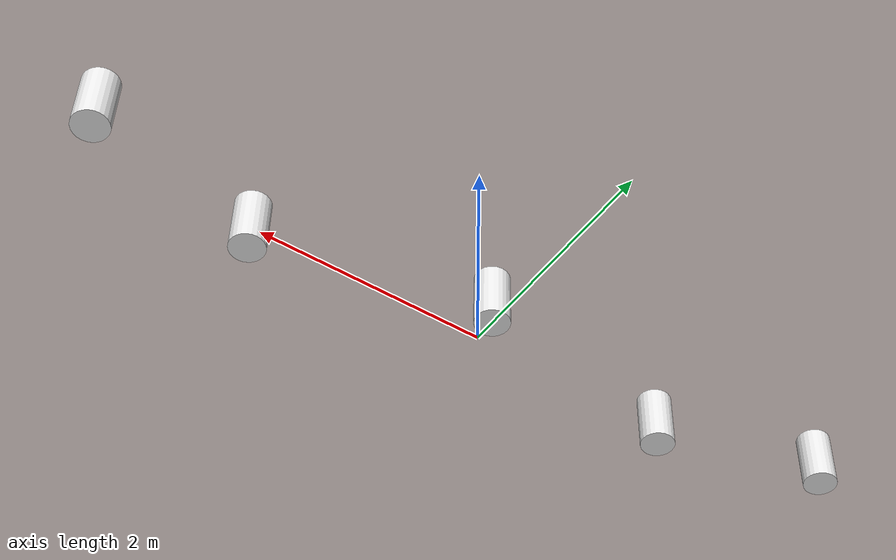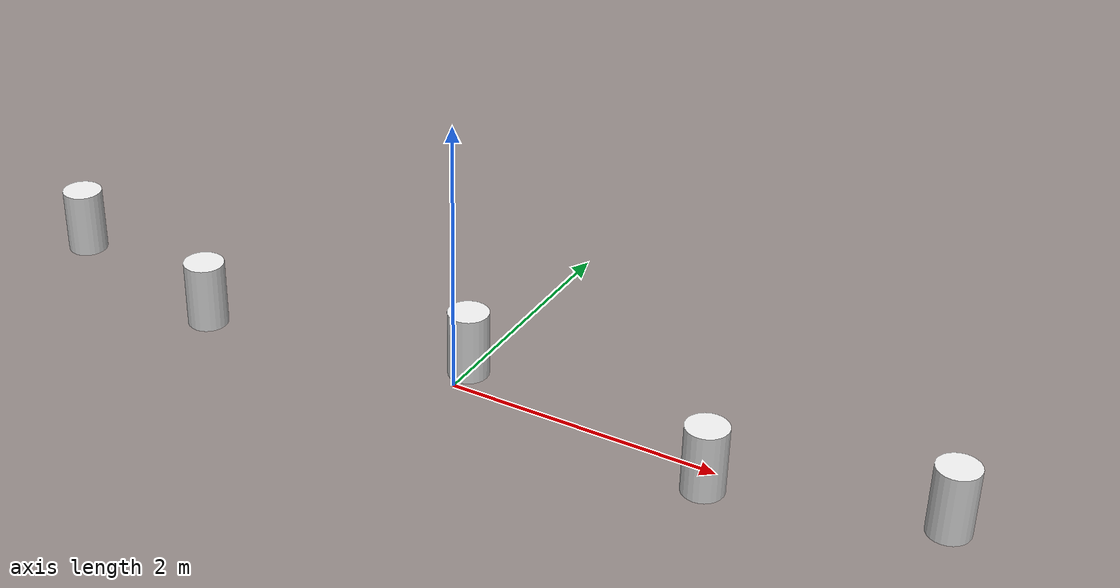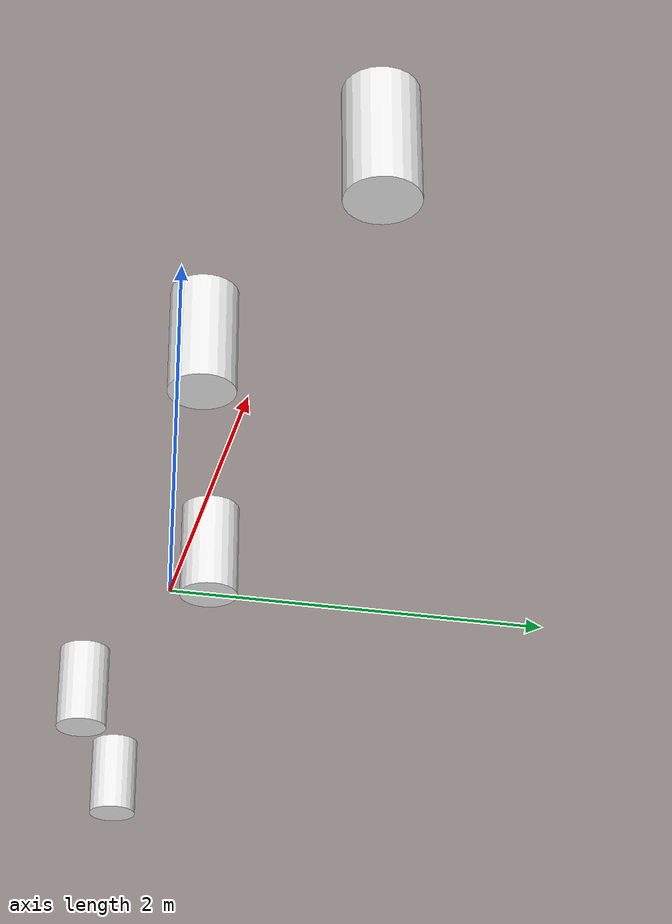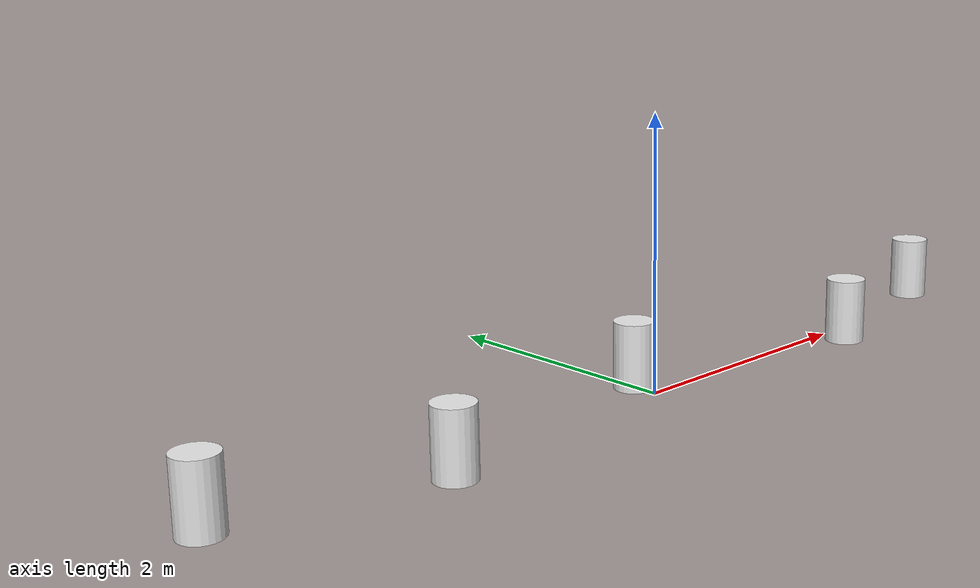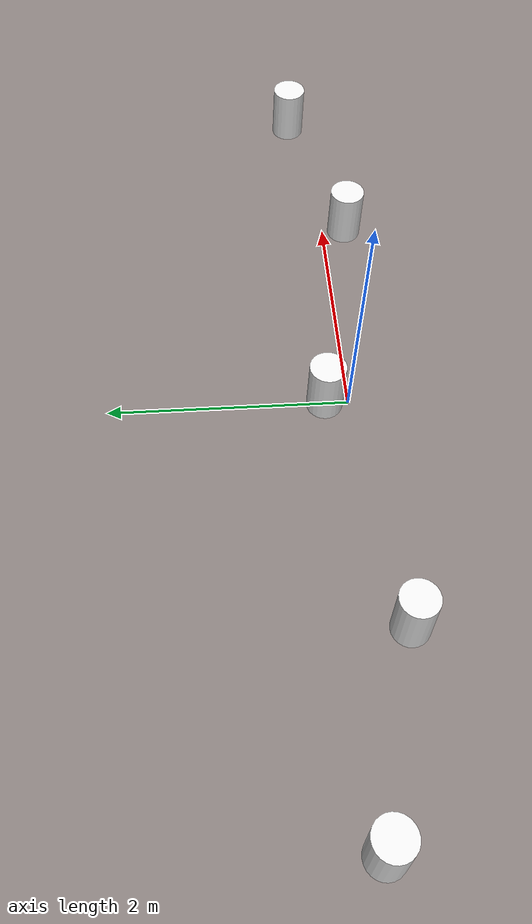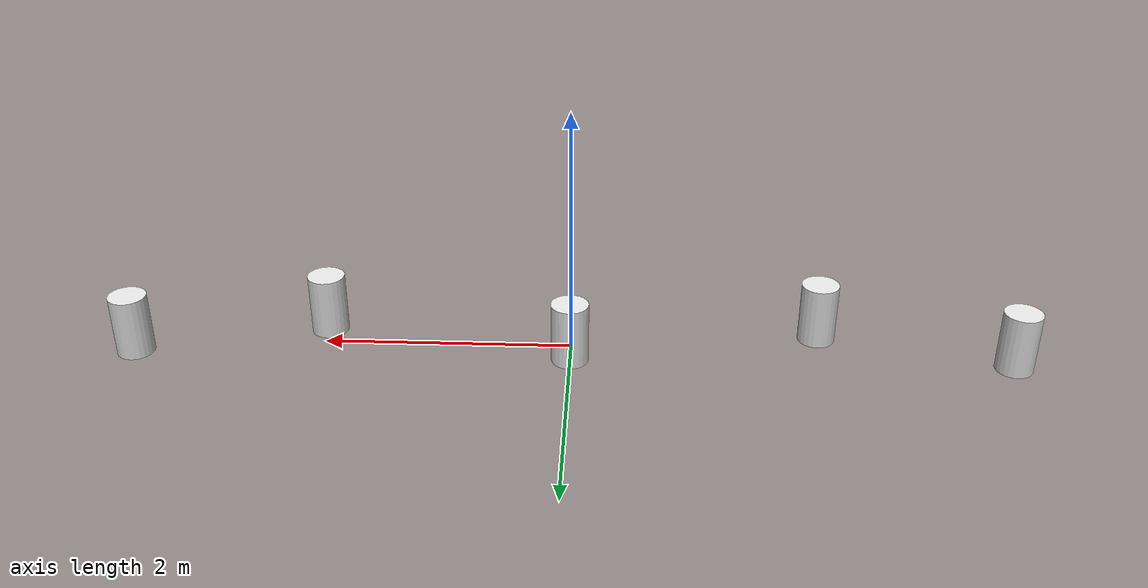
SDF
<?xml version='1.0'?>
<sdf version='1.6'>
  <model name='obstacles'>
    <pose frame=''>0 0 0 0 0 0</pose>
    <link name='obstacle'>
      <collision name='obstacle_1'>
        <pose>-2.0 -0.2 0.25 0 0 0</pose>
        <geometry>
          <cylinder>
            <radius>0.15</radius>
            <length>0.5</length>
          </cylinder>
        </geometry>
        <max_contacts>10</max_contacts>
        <surface>
          <bounce/>
          <friction>
            <ode/>
          </friction>
          <contact>
            <ode/>
          </contact>
        </surface>
      </collision>

      <visual name='obstacle_1'>
        <pose>-2.0 -0.2 0.25 0 0 0</pose>
        <geometry>
          <cylinder>
            <radius>0.15</radius>
            <length>0.5</length>
          </cylinder>
        </geometry>
        <material>
          <script>
            <uri>file://media/materials/scripts/gazebo.material</uri>
            <name>Gazebo/White</name>
          </script>
        </material>
      </visual>

      <collision name='obstacle_2'>
        <pose>-3.5 0.2 0.25 0 0 0</pose>
        <geometry>
          <cylinder>
            <radius>0.15</radius>
            <length>0.5</length>
          </cylinder>
        </geometry>
        <max_contacts>10</max_contacts>
        <surface>
          <bounce/>
          <friction>
            <ode/>
          </friction>
          <contact>
            <ode/>
          </contact>
        </surface>
      </collision>

      <visual name='obstacle_2'>
        <pose>-3.5 0.2 0.25 0 0 0</pose>
        <geometry>
          <cylinder>
            <radius>0.15</radius>
            <length>0.5</length>
          </cylinder>
        </geometry>
        <material>
          <script>
            <uri>file://media/materials/scripts/gazebo.material</uri>
            <name>Gazebo/White</name>
          </script>
        </material>
      </visual>

      <collision name='obstacle_3'>
        <pose>3.5 0.2 0.25 0 0 0</pose>
        <geometry>
          <cylinder>
            <radius>0.15</radius>
            <length>0.5</length>
          </cylinder>
        </geometry>
        <max_contacts>10</max_contacts>
        <surface>
          <bounce/>
          <friction>
            <ode/>
          </friction>
          <contact>
            <ode/>
          </contact>
        </surface>
      </collision>

      <visual name='obstacle_3'>
        <pose>3.5 0.2 0.25 0 0 0</pose>
        <geometry>
          <cylinder>
            <radius>0.15</radius>
            <length>0.5</length>
          </cylinder>
        </geometry>
        <material>
          <script>
            <uri>file://media/materials/scripts/gazebo.material</uri>
            <name>Gazebo/White</name>
          </script>
        </material>
      </visual>

      <collision name='obstacle_4'>
        <pose>0.0 0.2 0.25 0 0 0</pose>
        <geometry>
          <cylinder>
            <radius>0.15</radius>
            <length>0.5</length>
          </cylinder>
        </geometry>
        <max_contacts>10</max_contacts>
        <surface>
          <bounce/>
          <friction>
            <ode/>
          </friction>
          <contact>
            <ode/>
          </contact>
        </surface>
      </collision>

      <visual name='obstacle_4'>
        <pose>0.0 0.2 0.25 0 0 0</pose>
        <geometry>
          <cylinder>
            <radius>0.15</radius>
            <length>0.5</length>
          </cylinder>
        </geometry>
        <material>
          <script>
            <uri>file://media/materials/scripts/gazebo.material</uri>
            <name>Gazebo/White</name>
          </script>
        </material>
      </visual>

      <collision name='obstacle_5'>
        <pose>2.0 -0.2 0.25 0 0 0</pose>
        <geometry>
          <cylinder>
            <radius>0.15</radius>
            <length>0.5</length>
          </cylinder>
        </geometry>
        <max_contacts>10</max_contacts>
        <surface>
          <bounce/>
          <friction>
            <ode/>
          </friction>
          <contact>
            <ode/>
          </contact>
        </surface>
      </collision>

      <visual name='obstacle_5'>
        <pose>2.0 -0.2 0.25 0 0 0</pose>
        <geometry>
          <cylinder>
            <radius>0.15</radius>
            <length>0.5</length>
          </cylinder>
        </geometry>
        <material>
          <script>
            <uri>file://media/materials/scripts/gazebo.material</uri>
            <name>Gazebo/White</name>
          </script>
        </material>
      </visual>
    </link>
    <static>1</static>

  </model>
</sdf>
